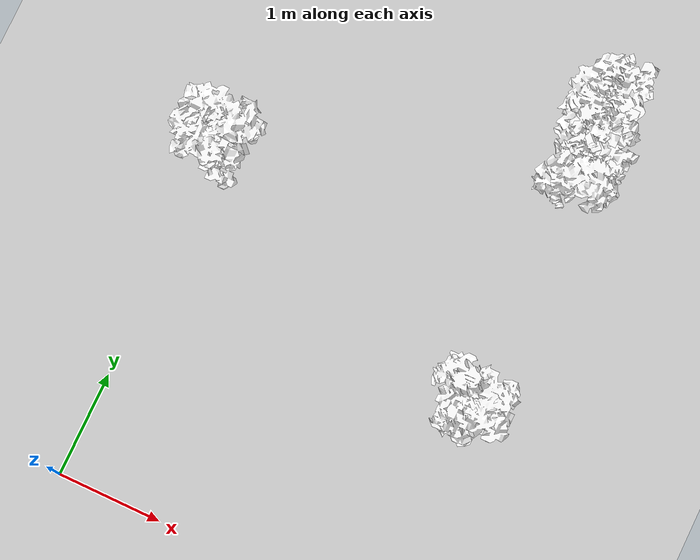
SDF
<sdf version="1.7">
 <world name="field">
  <physics name="1ms" type="ignored">
   <max_step_size>0.001</max_step_size>
   <real_time_factor>1</real_time_factor>
   <real_time_update_rate>1000</real_time_update_rate>
  </physics>
  <plugin name="ignition::gazebo::systems::Physics" filename="ignition-gazebo-physics-system"/>
  <plugin name="ignition::gazebo::systems::UserCommands" filename="ignition-gazebo-user-commands-system"/>
  <plugin name="ignition::gazebo::systems::SceneBroadcaster" filename="ignition-gazebo-scene-broadcaster-system"/>
  <plugin filename="ignition-gazebo-sensors-system" name="ignition::gazebo::systems::Sensors">
   <render_engine>ogre2</render_engine>
  </plugin>
  <scene><ambient>1 1 1 1</ambient><background>0.8 0.8 0.8 1</background><shadows>1</shadows></scene>
  <light name="sun" type="directional">
   <pose>0 0 10 0 -0 0</pose>
   <diffuse>0.8 0.8 0.8 1</diffuse>
   <specular>0.8 0.8 0.8 1</specular>
   <attenuation>
    <range>1000</range>
    <constant>0.9</constant>
    <linear>0.01</linear>
    <quadratic>0.001</quadratic>
   </attenuation>
   <direction>-0.5 0.1 -0.9</direction>
   <spot><inner_angle>0</inner_angle><outer_angle>0</outer_angle><falloff>0</falloff></spot>
  </light>
  <gravity>0 0 -9.8</gravity>
  <magnetic_field>6e-06 2.3e-05 -4.2e-05</magnetic_field>
  <atmosphere type="adiabatic"/>
  <include><uri>ground</uri><name>ground</name><pose>5.0 5.0 0 0 0 0</pose></include>
  <include><uri>tomato_11</uri><name>tomato_11</name><pose>0.0 3.3 0 0 0 0</pose></include>
  <include><uri>tomato_106</uri><name>tomato_106</name><pose>3.0999999999999996 2.1 0 0 0 0</pose></include>
  <include><uri>tomato_114</uri><name>tomato_114</name><pose>3.0999999999999996 4.5 0 0 0 0</pose></include>
  <include><uri>tomato_115</uri><name>tomato_115</name><pose>3.0999999999999996 4.8 0 0 0 0</pose></include>
  <include><uri>tomato_116</uri><name>tomato_116</name><pose>3.0999999999999996 5.1 0 0 0 0</pose></include>
 </world>
</sdf>

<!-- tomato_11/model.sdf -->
<sdf version="1.6">
  <model name="tomato_11">
    <static>true</static>
    <link name="link">
      <collision name="collision">
        <geometry>
          <box>
            <size>.1 .1 1</size>
          </box>
        </geometry>
      </collision>
      <visual name="branch">
        <geometry>
          <mesh>
            <uri>file://tomato_11/meshes/tomato.dae</uri>
            <submesh>
              <name>Branch1</name>
            </submesh>
          </mesh>
        </geometry>
        <material>
          <diffuse>1.0 1.0 1.0</diffuse>
          <pbr>
            <metal>
              <albedo_map>file://tomato_11/materials/textures/AG15brn1.png</albedo_map>
            </metal>
          </pbr>
        </material>
          <plugin filename="ignition-gazebo-label-system" name="ignition::gazebo::systems::Label">
            <label>2</label>
          </plugin>
      </visual>
      <visual name="leaf1">
        <geometry>
          <mesh>
            <uri>file://tomato_11/meshes/tomato.dae</uri>
            <submesh>
              <name>Leaf1</name>
            </submesh>
          </mesh>
        </geometry>
        <material>
          <diffuse>1.0 1.0 1.0</diffuse>
          <pbr>
            <metal>
              <albedo_map>file://tomato_11/materials/textures/AG15lef1.png</albedo_map>
            </metal>
          </pbr>
        </material>
          <plugin filename="ignition-gazebo-label-system" name="ignition::gazebo::systems::Label">
            <label>3</label>
          </plugin>
      </visual>
      <visual name="leaf2">
        <geometry>
          <mesh>
            <uri>file://tomato_11/meshes/tomato.dae</uri>
            <submesh>
              <name>Leaf2</name>
            </submesh>
          </mesh>
        </geometry>
        <material>
          <diffuse>1.0 1.0 1.0</diffuse>
          <pbr>
            <metal>
              <albedo_map>file://tomato_11/materials/textures/AG15lef2.png</albedo_map>
            </metal>
          </pbr>
        </material>
          <plugin filename="ignition-gazebo-label-system" name="ignition::gazebo::systems::Label">
            <label>3</label>
          </plugin>
      </visual>
      <visual name="fruit1">
        <geometry>
          <mesh>
            <uri>file://tomato_11/meshes/tomato.dae</uri>
            <submesh>
              <name>Fruit1</name>
            </submesh>
          </mesh>
        </geometry>
        <material>
          <diffuse>1.0 1.0 1.0</diffuse>
          <pbr>
            <metal>
              <albedo_map>file://tomato_11/materials/textures/AG15frt1.png</albedo_map>
            </metal>
          </pbr>
        </material>
          <plugin filename="ignition-gazebo-label-system" name="ignition::gazebo::systems::Label">
            <label>4</label>
          </plugin>
      </visual>
      <visual name="fruit2">
        <geometry>
          <mesh>
            <uri>file://tomato_11/meshes/tomato.dae</uri>
            <submesh>
              <name>Fruit2</name>
            </submesh>
          </mesh>
        </geometry>
        <material>
          <diffuse>1.0 1.0 1.0</diffuse>
          <pbr>
            <metal>
              <albedo_map>file://tomato_11/materials/textures/AG15frt2.png</albedo_map>
            </metal>
          </pbr>
        </material>
          <plugin filename="ignition-gazebo-label-system" name="ignition::gazebo::systems::Label">
            <label>4</label>
          </plugin>
      </visual>
      <visual name="fruit3">
        <geometry>
          <mesh>
            <uri>file://tomato_11/meshes/tomato.dae</uri>
            <submesh>
              <name>Fruit3</name>
            </submesh>
          </mesh>
        </geometry>
        <material>
          <diffuse>1.0 1.0 1.0</diffuse>
          <pbr>
            <metal>
              <albedo_map>file://tomato_11/materials/textures/AG15frt3.png</albedo_map>
            </metal>
          </pbr>
        </material>
      </visual>
          <plugin filename="ignition-gazebo-label-system" name="ignition::gazebo::systems::Label">
            <label>4</label>
          </plugin>
      <visual name="fruit4">
        <geometry>
          <mesh>
            <uri>file://tomato_11/meshes/tomato.dae</uri>
            <submesh>
              <name>Fruit4</name>
            </submesh>
          </mesh>
        </geometry>
        <material>
          <diffuse>1.0 1.0 1.0</diffuse>
          <pbr>
            <metal>
              <albedo_map>file://tomato_11/materials/textures/AG15frt4.png</albedo_map>
            </metal>
          </pbr>
        </material>
          <plugin filename="ignition-gazebo-label-system" name="ignition::gazebo::systems::Label">
            <label>4</label>
          </plugin>
      </visual>
      <visual name="blossom1">
        <geometry>
          <mesh>
            <uri>file://tomato_11/meshes/tomato.dae</uri>
            <submesh>
              <name>Blossom1</name>
            </submesh>
          </mesh>
        </geometry>
        <material>
          <diffuse>1.0 1.0 1.0</diffuse>
          <pbr>
            <metal>
              <albedo_map>file://tomato_11/materials/textures/AG15blo1.png</albedo_map>
            </metal>
          </pbr>
        </material>
          <plugin filename="ignition-gazebo-label-system" name="ignition::gazebo::systems::Label">
            <label>5</label>
          </plugin>
      </visual>
      <visual name="blossom2">
        <geometry>
          <mesh>
            <uri>file://tomato_11/meshes/tomato.dae</uri>
            <submesh>
              <name>Blossom2</name>
            </submesh>
          </mesh>
        </geometry>
        <material>
          <diffuse>1.0 1.0 1.0</diffuse>
          <pbr>
            <metal>
              <albedo_map>file://tomato_11/materials/textures/AG15blo2.png</albedo_map>
            </metal>
          </pbr>
        </material>
          <plugin filename="ignition-gazebo-label-system" name="ignition::gazebo::systems::Label">
            <label>5</label>
          </plugin>
      </visual>
      <visual name="blossom3">
        <geometry>
          <mesh>
            <uri>file://tomato_11/meshes/tomato.dae</uri>
            <submesh>
              <name>Blossom3</name>
            </submesh>
          </mesh>
        </geometry>
        <material>
          <diffuse>1.0 1.0 1.0</diffuse>
          <pbr>
            <metal>
              <albedo_map>file://tomato_11/materials/textures/AG15blo3.png</albedo_map>
            </metal>
          </pbr>
        </material>
          <plugin filename="ignition-gazebo-label-system" name="ignition::gazebo::systems::Label">
            <label>5</label>
          </plugin>
      </visual>
    </link>
  </model>
</sdf>

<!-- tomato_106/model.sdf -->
<sdf version="1.6">
  <model name="tomato_106">
    <static>true</static>
    <link name="link">
      <collision name="collision">
        <geometry>
          <box>
            <size>.1 .1 1</size>
          </box>
        </geometry>
      </collision>
      <visual name="branch">
        <geometry>
          <mesh>
            <uri>file://tomato_106/meshes/tomato.dae</uri>
            <submesh>
              <name>Branch1</name>
            </submesh>
          </mesh>
        </geometry>
        <material>
          <diffuse>1.0 1.0 1.0</diffuse>
          <pbr>
            <metal>
              <albedo_map>file://tomato_106/materials/textures/AG15brn1.png</albedo_map>
            </metal>
          </pbr>
        </material>
          <plugin filename="ignition-gazebo-label-system" name="ignition::gazebo::systems::Label">
            <label>2</label>
          </plugin>
      </visual>
      <visual name="leaf1">
        <geometry>
          <mesh>
            <uri>file://tomato_106/meshes/tomato.dae</uri>
            <submesh>
              <name>Leaf1</name>
            </submesh>
          </mesh>
        </geometry>
        <material>
          <diffuse>1.0 1.0 1.0</diffuse>
          <pbr>
            <metal>
              <albedo_map>file://tomato_106/materials/textures/AG15lef1.png</albedo_map>
            </metal>
          </pbr>
        </material>
          <plugin filename="ignition-gazebo-label-system" name="ignition::gazebo::systems::Label">
            <label>3</label>
          </plugin>
      </visual>
      <visual name="leaf2">
        <geometry>
          <mesh>
            <uri>file://tomato_106/meshes/tomato.dae</uri>
            <submesh>
              <name>Leaf2</name>
            </submesh>
          </mesh>
        </geometry>
        <material>
          <diffuse>1.0 1.0 1.0</diffuse>
          <pbr>
            <metal>
              <albedo_map>file://tomato_106/materials/textures/AG15lef2.png</albedo_map>
            </metal>
          </pbr>
        </material>
          <plugin filename="ignition-gazebo-label-system" name="ignition::gazebo::systems::Label">
            <label>3</label>
          </plugin>
      </visual>
      <visual name="fruit1">
        <geometry>
          <mesh>
            <uri>file://tomato_106/meshes/tomato.dae</uri>
            <submesh>
              <name>Fruit1</name>
            </submesh>
          </mesh>
        </geometry>
        <material>
          <diffuse>1.0 1.0 1.0</diffuse>
          <pbr>
            <metal>
              <albedo_map>file://tomato_106/materials/textures/AG15frt1.png</albedo_map>
            </metal>
          </pbr>
        </material>
          <plugin filename="ignition-gazebo-label-system" name="ignition::gazebo::systems::Label">
            <label>4</label>
          </plugin>
      </visual>
      <visual name="fruit2">
        <geometry>
          <mesh>
            <uri>file://tomato_106/meshes/tomato.dae</uri>
            <submesh>
              <name>Fruit2</name>
            </submesh>
          </mesh>
        </geometry>
        <material>
          <diffuse>1.0 1.0 1.0</diffuse>
          <pbr>
            <metal>
              <albedo_map>file://tomato_106/materials/textures/AG15frt2.png</albedo_map>
            </metal>
          </pbr>
        </material>
          <plugin filename="ignition-gazebo-label-system" name="ignition::gazebo::systems::Label">
            <label>4</label>
          </plugin>
      </visual>
      <visual name="fruit3">
        <geometry>
          <mesh>
            <uri>file://tomato_106/meshes/tomato.dae</uri>
            <submesh>
              <name>Fruit3</name>
            </submesh>
          </mesh>
        </geometry>
        <material>
          <diffuse>1.0 1.0 1.0</diffuse>
          <pbr>
            <metal>
              <albedo_map>file://tomato_106/materials/textures/AG15frt3.png</albedo_map>
            </metal>
          </pbr>
        </material>
      </visual>
          <plugin filename="ignition-gazebo-label-system" name="ignition::gazebo::systems::Label">
            <label>4</label>
          </plugin>
      <visual name="fruit4">
        <geometry>
          <mesh>
            <uri>file://tomato_106/meshes/tomato.dae</uri>
            <submesh>
              <name>Fruit4</name>
            </submesh>
          </mesh>
        </geometry>
        <material>
          <diffuse>1.0 1.0 1.0</diffuse>
          <pbr>
            <metal>
              <albedo_map>file://tomato_106/materials/textures/AG15frt4.png</albedo_map>
            </metal>
          </pbr>
        </material>
          <plugin filename="ignition-gazebo-label-system" name="ignition::gazebo::systems::Label">
            <label>4</label>
          </plugin>
      </visual>
      <visual name="blossom1">
        <geometry>
          <mesh>
            <uri>file://tomato_106/meshes/tomato.dae</uri>
            <submesh>
              <name>Blossom1</name>
            </submesh>
          </mesh>
        </geometry>
        <material>
          <diffuse>1.0 1.0 1.0</diffuse>
          <pbr>
            <metal>
              <albedo_map>file://tomato_106/materials/textures/AG15blo1.png</albedo_map>
            </metal>
          </pbr>
        </material>
          <plugin filename="ignition-gazebo-label-system" name="ignition::gazebo::systems::Label">
            <label>5</label>
          </plugin>
      </visual>
      <visual name="blossom2">
        <geometry>
          <mesh>
            <uri>file://tomato_106/meshes/tomato.dae</uri>
            <submesh>
              <name>Blossom2</name>
            </submesh>
          </mesh>
        </geometry>
        <material>
          <diffuse>1.0 1.0 1.0</diffuse>
          <pbr>
            <metal>
              <albedo_map>file://tomato_106/materials/textures/AG15blo2.png</albedo_map>
            </metal>
          </pbr>
        </material>
          <plugin filename="ignition-gazebo-label-system" name="ignition::gazebo::systems::Label">
            <label>5</label>
          </plugin>
      </visual>
      <visual name="blossom3">
        <geometry>
          <mesh>
            <uri>file://tomato_106/meshes/tomato.dae</uri>
            <submesh>
              <name>Blossom3</name>
            </submesh>
          </mesh>
        </geometry>
        <material>
          <diffuse>1.0 1.0 1.0</diffuse>
          <pbr>
            <metal>
              <albedo_map>file://tomato_106/materials/textures/AG15blo3.png</albedo_map>
            </metal>
          </pbr>
        </material>
          <plugin filename="ignition-gazebo-label-system" name="ignition::gazebo::systems::Label">
            <label>5</label>
          </plugin>
      </visual>
    </link>
  </model>
</sdf>

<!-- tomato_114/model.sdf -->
<sdf version="1.6">
  <model name="tomato_114">
    <static>true</static>
    <link name="link">
      <collision name="collision">
        <geometry>
          <box>
            <size>.1 .1 1</size>
          </box>
        </geometry>
      </collision>
      <visual name="branch">
        <geometry>
          <mesh>
            <uri>file://tomato_114/meshes/tomato.dae</uri>
            <submesh>
              <name>Branch1</name>
            </submesh>
          </mesh>
        </geometry>
        <material>
          <diffuse>1.0 1.0 1.0</diffuse>
          <pbr>
            <metal>
              <albedo_map>file://tomato_114/materials/textures/AG15brn1.png</albedo_map>
            </metal>
          </pbr>
        </material>
          <plugin filename="ignition-gazebo-label-system" name="ignition::gazebo::systems::Label">
            <label>2</label>
          </plugin>
      </visual>
      <visual name="leaf1">
        <geometry>
          <mesh>
            <uri>file://tomato_114/meshes/tomato.dae</uri>
            <submesh>
              <name>Leaf1</name>
            </submesh>
          </mesh>
        </geometry>
        <material>
          <diffuse>1.0 1.0 1.0</diffuse>
          <pbr>
            <metal>
              <albedo_map>file://tomato_114/materials/textures/AG15lef1.png</albedo_map>
            </metal>
          </pbr>
        </material>
          <plugin filename="ignition-gazebo-label-system" name="ignition::gazebo::systems::Label">
            <label>3</label>
          </plugin>
      </visual>
      <visual name="leaf2">
        <geometry>
          <mesh>
            <uri>file://tomato_114/meshes/tomato.dae</uri>
            <submesh>
              <name>Leaf2</name>
            </submesh>
          </mesh>
        </geometry>
        <material>
          <diffuse>1.0 1.0 1.0</diffuse>
          <pbr>
            <metal>
              <albedo_map>file://tomato_114/materials/textures/AG15lef2.png</albedo_map>
            </metal>
          </pbr>
        </material>
          <plugin filename="ignition-gazebo-label-system" name="ignition::gazebo::systems::Label">
            <label>3</label>
          </plugin>
      </visual>
      <visual name="fruit1">
        <geometry>
          <mesh>
            <uri>file://tomato_114/meshes/tomato.dae</uri>
            <submesh>
              <name>Fruit1</name>
            </submesh>
          </mesh>
        </geometry>
        <material>
          <diffuse>1.0 1.0 1.0</diffuse>
          <pbr>
            <metal>
              <albedo_map>file://tomato_114/materials/textures/AG15frt1.png</albedo_map>
            </metal>
          </pbr>
        </material>
          <plugin filename="ignition-gazebo-label-system" name="ignition::gazebo::systems::Label">
            <label>4</label>
          </plugin>
      </visual>
      <visual name="fruit2">
        <geometry>
          <mesh>
            <uri>file://tomato_114/meshes/tomato.dae</uri>
            <submesh>
              <name>Fruit2</name>
            </submesh>
          </mesh>
        </geometry>
        <material>
          <diffuse>1.0 1.0 1.0</diffuse>
          <pbr>
            <metal>
              <albedo_map>file://tomato_114/materials/textures/AG15frt2.png</albedo_map>
            </metal>
          </pbr>
        </material>
          <plugin filename="ignition-gazebo-label-system" name="ignition::gazebo::systems::Label">
            <label>4</label>
          </plugin>
      </visual>
      <visual name="fruit3">
        <geometry>
          <mesh>
            <uri>file://tomato_114/meshes/tomato.dae</uri>
            <submesh>
              <name>Fruit3</name>
            </submesh>
          </mesh>
        </geometry>
        <material>
          <diffuse>1.0 1.0 1.0</diffuse>
          <pbr>
            <metal>
              <albedo_map>file://tomato_114/materials/textures/AG15frt3.png</albedo_map>
            </metal>
          </pbr>
        </material>
      </visual>
          <plugin filename="ignition-gazebo-label-system" name="ignition::gazebo::systems::Label">
            <label>4</label>
          </plugin>
      <visual name="fruit4">
        <geometry>
          <mesh>
            <uri>file://tomato_114/meshes/tomato.dae</uri>
            <submesh>
              <name>Fruit4</name>
            </submesh>
          </mesh>
        </geometry>
        <material>
          <diffuse>1.0 1.0 1.0</diffuse>
          <pbr>
            <metal>
              <albedo_map>file://tomato_114/materials/textures/AG15frt4.png</albedo_map>
            </metal>
          </pbr>
        </material>
          <plugin filename="ignition-gazebo-label-system" name="ignition::gazebo::systems::Label">
            <label>4</label>
          </plugin>
      </visual>
      <visual name="blossom1">
        <geometry>
          <mesh>
            <uri>file://tomato_114/meshes/tomato.dae</uri>
            <submesh>
              <name>Blossom1</name>
            </submesh>
          </mesh>
        </geometry>
        <material>
          <diffuse>1.0 1.0 1.0</diffuse>
          <pbr>
            <metal>
              <albedo_map>file://tomato_114/materials/textures/AG15blo1.png</albedo_map>
            </metal>
          </pbr>
        </material>
          <plugin filename="ignition-gazebo-label-system" name="ignition::gazebo::systems::Label">
            <label>5</label>
          </plugin>
      </visual>
      <visual name="blossom2">
        <geometry>
          <mesh>
            <uri>file://tomato_114/meshes/tomato.dae</uri>
            <submesh>
              <name>Blossom2</name>
            </submesh>
          </mesh>
        </geometry>
        <material>
          <diffuse>1.0 1.0 1.0</diffuse>
          <pbr>
            <metal>
              <albedo_map>file://tomato_114/materials/textures/AG15blo2.png</albedo_map>
            </metal>
          </pbr>
        </material>
          <plugin filename="ignition-gazebo-label-system" name="ignition::gazebo::systems::Label">
            <label>5</label>
          </plugin>
      </visual>
      <visual name="blossom3">
        <geometry>
          <mesh>
            <uri>file://tomato_114/meshes/tomato.dae</uri>
            <submesh>
              <name>Blossom3</name>
            </submesh>
          </mesh>
        </geometry>
        <material>
          <diffuse>1.0 1.0 1.0</diffuse>
          <pbr>
            <metal>
              <albedo_map>file://tomato_114/materials/textures/AG15blo3.png</albedo_map>
            </metal>
          </pbr>
        </material>
          <plugin filename="ignition-gazebo-label-system" name="ignition::gazebo::systems::Label">
            <label>5</label>
          </plugin>
      </visual>
    </link>
  </model>
</sdf>

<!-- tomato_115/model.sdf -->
<sdf version="1.6">
  <model name="tomato_115">
    <static>true</static>
    <link name="link">
      <collision name="collision">
        <geometry>
          <box>
            <size>.1 .1 1</size>
          </box>
        </geometry>
      </collision>
      <visual name="branch">
        <geometry>
          <mesh>
            <uri>file://tomato_115/meshes/tomato.dae</uri>
            <submesh>
              <name>Branch1</name>
            </submesh>
          </mesh>
        </geometry>
        <material>
          <diffuse>1.0 1.0 1.0</diffuse>
          <pbr>
            <metal>
              <albedo_map>file://tomato_115/materials/textures/AG15brn1.png</albedo_map>
            </metal>
          </pbr>
        </material>
          <plugin filename="ignition-gazebo-label-system" name="ignition::gazebo::systems::Label">
            <label>2</label>
          </plugin>
      </visual>
      <visual name="leaf1">
        <geometry>
          <mesh>
            <uri>file://tomato_115/meshes/tomato.dae</uri>
            <submesh>
              <name>Leaf1</name>
            </submesh>
          </mesh>
        </geometry>
        <material>
          <diffuse>1.0 1.0 1.0</diffuse>
          <pbr>
            <metal>
              <albedo_map>file://tomato_115/materials/textures/AG15lef1.png</albedo_map>
            </metal>
          </pbr>
        </material>
          <plugin filename="ignition-gazebo-label-system" name="ignition::gazebo::systems::Label">
            <label>3</label>
          </plugin>
      </visual>
      <visual name="leaf2">
        <geometry>
          <mesh>
            <uri>file://tomato_115/meshes/tomato.dae</uri>
            <submesh>
              <name>Leaf2</name>
            </submesh>
          </mesh>
        </geometry>
        <material>
          <diffuse>1.0 1.0 1.0</diffuse>
          <pbr>
            <metal>
              <albedo_map>file://tomato_115/materials/textures/AG15lef2.png</albedo_map>
            </metal>
          </pbr>
        </material>
          <plugin filename="ignition-gazebo-label-system" name="ignition::gazebo::systems::Label">
            <label>3</label>
          </plugin>
      </visual>
      <visual name="fruit1">
        <geometry>
          <mesh>
            <uri>file://tomato_115/meshes/tomato.dae</uri>
            <submesh>
              <name>Fruit1</name>
            </submesh>
          </mesh>
        </geometry>
        <material>
          <diffuse>1.0 1.0 1.0</diffuse>
          <pbr>
            <metal>
              <albedo_map>file://tomato_115/materials/textures/AG15frt1.png</albedo_map>
            </metal>
          </pbr>
        </material>
          <plugin filename="ignition-gazebo-label-system" name="ignition::gazebo::systems::Label">
            <label>4</label>
          </plugin>
      </visual>
      <visual name="fruit2">
        <geometry>
          <mesh>
            <uri>file://tomato_115/meshes/tomato.dae</uri>
            <submesh>
              <name>Fruit2</name>
            </submesh>
          </mesh>
        </geometry>
        <material>
          <diffuse>1.0 1.0 1.0</diffuse>
          <pbr>
            <metal>
              <albedo_map>file://tomato_115/materials/textures/AG15frt2.png</albedo_map>
            </metal>
          </pbr>
        </material>
          <plugin filename="ignition-gazebo-label-system" name="ignition::gazebo::systems::Label">
            <label>4</label>
          </plugin>
      </visual>
      <visual name="fruit3">
        <geometry>
          <mesh>
            <uri>file://tomato_115/meshes/tomato.dae</uri>
            <submesh>
              <name>Fruit3</name>
            </submesh>
          </mesh>
        </geometry>
        <material>
          <diffuse>1.0 1.0 1.0</diffuse>
          <pbr>
            <metal>
              <albedo_map>file://tomato_115/materials/textures/AG15frt3.png</albedo_map>
            </metal>
          </pbr>
        </material>
      </visual>
          <plugin filename="ignition-gazebo-label-system" name="ignition::gazebo::systems::Label">
            <label>4</label>
          </plugin>
      <visual name="fruit4">
        <geometry>
          <mesh>
            <uri>file://tomato_115/meshes/tomato.dae</uri>
            <submesh>
              <name>Fruit4</name>
            </submesh>
          </mesh>
        </geometry>
        <material>
          <diffuse>1.0 1.0 1.0</diffuse>
          <pbr>
            <metal>
              <albedo_map>file://tomato_115/materials/textures/AG15frt4.png</albedo_map>
            </metal>
          </pbr>
        </material>
          <plugin filename="ignition-gazebo-label-system" name="ignition::gazebo::systems::Label">
            <label>4</label>
          </plugin>
      </visual>
      <visual name="blossom1">
        <geometry>
          <mesh>
            <uri>file://tomato_115/meshes/tomato.dae</uri>
            <submesh>
              <name>Blossom1</name>
            </submesh>
          </mesh>
        </geometry>
        <material>
          <diffuse>1.0 1.0 1.0</diffuse>
          <pbr>
            <metal>
              <albedo_map>file://tomato_115/materials/textures/AG15blo1.png</albedo_map>
            </metal>
          </pbr>
        </material>
          <plugin filename="ignition-gazebo-label-system" name="ignition::gazebo::systems::Label">
            <label>5</label>
          </plugin>
      </visual>
      <visual name="blossom2">
        <geometry>
          <mesh>
            <uri>file://tomato_115/meshes/tomato.dae</uri>
            <submesh>
              <name>Blossom2</name>
            </submesh>
          </mesh>
        </geometry>
        <material>
          <diffuse>1.0 1.0 1.0</diffuse>
          <pbr>
            <metal>
              <albedo_map>file://tomato_115/materials/textures/AG15blo2.png</albedo_map>
            </metal>
          </pbr>
        </material>
          <plugin filename="ignition-gazebo-label-system" name="ignition::gazebo::systems::Label">
            <label>5</label>
          </plugin>
      </visual>
      <visual name="blossom3">
        <geometry>
          <mesh>
            <uri>file://tomato_115/meshes/tomato.dae</uri>
            <submesh>
              <name>Blossom3</name>
            </submesh>
          </mesh>
        </geometry>
        <material>
          <diffuse>1.0 1.0 1.0</diffuse>
          <pbr>
            <metal>
              <albedo_map>file://tomato_115/materials/textures/AG15blo3.png</albedo_map>
            </metal>
          </pbr>
        </material>
          <plugin filename="ignition-gazebo-label-system" name="ignition::gazebo::systems::Label">
            <label>5</label>
          </plugin>
      </visual>
    </link>
  </model>
</sdf>

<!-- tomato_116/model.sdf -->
<sdf version="1.6">
  <model name="tomato_116">
    <static>true</static>
    <link name="link">
      <collision name="collision">
        <geometry>
          <box>
            <size>.1 .1 1</size>
          </box>
        </geometry>
      </collision>
      <visual name="branch">
        <geometry>
          <mesh>
            <uri>file://tomato_116/meshes/tomato.dae</uri>
            <submesh>
              <name>Branch1</name>
            </submesh>
          </mesh>
        </geometry>
        <material>
          <diffuse>1.0 1.0 1.0</diffuse>
          <pbr>
            <metal>
              <albedo_map>file://tomato_116/materials/textures/AG15brn1.png</albedo_map>
            </metal>
          </pbr>
        </material>
          <plugin filename="ignition-gazebo-label-system" name="ignition::gazebo::systems::Label">
            <label>2</label>
          </plugin>
      </visual>
      <visual name="leaf1">
        <geometry>
          <mesh>
            <uri>file://tomato_116/meshes/tomato.dae</uri>
            <submesh>
              <name>Leaf1</name>
            </submesh>
          </mesh>
        </geometry>
        <material>
          <diffuse>1.0 1.0 1.0</diffuse>
          <pbr>
            <metal>
              <albedo_map>file://tomato_116/materials/textures/AG15lef1.png</albedo_map>
            </metal>
          </pbr>
        </material>
          <plugin filename="ignition-gazebo-label-system" name="ignition::gazebo::systems::Label">
            <label>3</label>
          </plugin>
      </visual>
      <visual name="leaf2">
        <geometry>
          <mesh>
            <uri>file://tomato_116/meshes/tomato.dae</uri>
            <submesh>
              <name>Leaf2</name>
            </submesh>
          </mesh>
        </geometry>
        <material>
          <diffuse>1.0 1.0 1.0</diffuse>
          <pbr>
            <metal>
              <albedo_map>file://tomato_116/materials/textures/AG15lef2.png</albedo_map>
            </metal>
          </pbr>
        </material>
          <plugin filename="ignition-gazebo-label-system" name="ignition::gazebo::systems::Label">
            <label>3</label>
          </plugin>
      </visual>
      <visual name="fruit1">
        <geometry>
          <mesh>
            <uri>file://tomato_116/meshes/tomato.dae</uri>
            <submesh>
              <name>Fruit1</name>
            </submesh>
          </mesh>
        </geometry>
        <material>
          <diffuse>1.0 1.0 1.0</diffuse>
          <pbr>
            <metal>
              <albedo_map>file://tomato_116/materials/textures/AG15frt1.png</albedo_map>
            </metal>
          </pbr>
        </material>
          <plugin filename="ignition-gazebo-label-system" name="ignition::gazebo::systems::Label">
            <label>4</label>
          </plugin>
      </visual>
      <visual name="fruit2">
        <geometry>
          <mesh>
            <uri>file://tomato_116/meshes/tomato.dae</uri>
            <submesh>
              <name>Fruit2</name>
            </submesh>
          </mesh>
        </geometry>
        <material>
          <diffuse>1.0 1.0 1.0</diffuse>
          <pbr>
            <metal>
              <albedo_map>file://tomato_116/materials/textures/AG15frt2.png</albedo_map>
            </metal>
          </pbr>
        </material>
          <plugin filename="ignition-gazebo-label-system" name="ignition::gazebo::systems::Label">
            <label>4</label>
          </plugin>
      </visual>
      <visual name="fruit3">
        <geometry>
          <mesh>
            <uri>file://tomato_116/meshes/tomato.dae</uri>
            <submesh>
              <name>Fruit3</name>
            </submesh>
          </mesh>
        </geometry>
        <material>
          <diffuse>1.0 1.0 1.0</diffuse>
          <pbr>
            <metal>
              <albedo_map>file://tomato_116/materials/textures/AG15frt3.png</albedo_map>
            </metal>
          </pbr>
        </material>
      </visual>
          <plugin filename="ignition-gazebo-label-system" name="ignition::gazebo::systems::Label">
            <label>4</label>
          </plugin>
      <visual name="fruit4">
        <geometry>
          <mesh>
            <uri>file://tomato_116/meshes/tomato.dae</uri>
            <submesh>
              <name>Fruit4</name>
            </submesh>
          </mesh>
        </geometry>
        <material>
          <diffuse>1.0 1.0 1.0</diffuse>
          <pbr>
            <metal>
              <albedo_map>file://tomato_116/materials/textures/AG15frt4.png</albedo_map>
            </metal>
          </pbr>
        </material>
          <plugin filename="ignition-gazebo-label-system" name="ignition::gazebo::systems::Label">
            <label>4</label>
          </plugin>
      </visual>
      <visual name="blossom1">
        <geometry>
          <mesh>
            <uri>file://tomato_116/meshes/tomato.dae</uri>
            <submesh>
              <name>Blossom1</name>
            </submesh>
          </mesh>
        </geometry>
        <material>
          <diffuse>1.0 1.0 1.0</diffuse>
          <pbr>
            <metal>
              <albedo_map>file://tomato_116/materials/textures/AG15blo1.png</albedo_map>
            </metal>
          </pbr>
        </material>
          <plugin filename="ignition-gazebo-label-system" name="ignition::gazebo::systems::Label">
            <label>5</label>
          </plugin>
      </visual>
      <visual name="blossom2">
        <geometry>
          <mesh>
            <uri>file://tomato_116/meshes/tomato.dae</uri>
            <submesh>
              <name>Blossom2</name>
            </submesh>
          </mesh>
        </geometry>
        <material>
          <diffuse>1.0 1.0 1.0</diffuse>
          <pbr>
            <metal>
              <albedo_map>file://tomato_116/materials/textures/AG15blo2.png</albedo_map>
            </metal>
          </pbr>
        </material>
          <plugin filename="ignition-gazebo-label-system" name="ignition::gazebo::systems::Label">
            <label>5</label>
          </plugin>
      </visual>
      <visual name="blossom3">
        <geometry>
          <mesh>
            <uri>file://tomato_116/meshes/tomato.dae</uri>
            <submesh>
              <name>Blossom3</name>
            </submesh>
          </mesh>
        </geometry>
        <material>
          <diffuse>1.0 1.0 1.0</diffuse>
          <pbr>
            <metal>
              <albedo_map>file://tomato_116/materials/textures/AG15blo3.png</albedo_map>
            </metal>
          </pbr>
        </material>
          <plugin filename="ignition-gazebo-label-system" name="ignition::gazebo::systems::Label">
            <label>5</label>
          </plugin>
      </visual>
    </link>
  </model>
</sdf>
